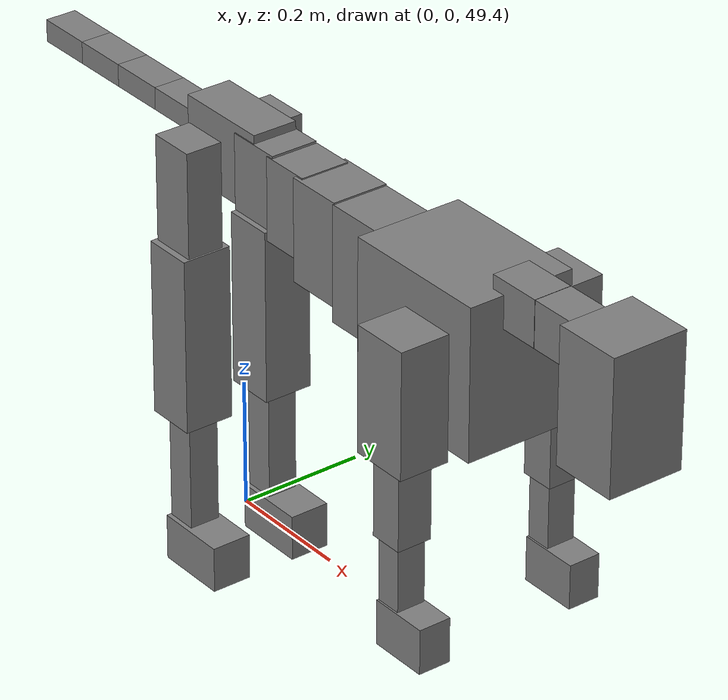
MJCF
<mujoco model="dog">

    <default>
        <joint armature="0.02" stiffness="1" damping="0.2" limited="true"/>
        <geom condim="3" friction="1 0.05 0.05" margin="0.01"/>
        <motor ctrllimited="true" ctrlrange="-1.0 1.0" forcelimited="true" gear="50"/>
    </default>

    <compiler inertiafromgeom="true" angle="radian"/>

    <option timestep="0.016" iterations="50" tolerance="1e-10" solver="Newton" jacobian="dense" cone="pyramidal"/>

    <size nconmax="20000" njmax="60000" nstack="5000000"/>
    <visual>
        <map force="0.1" zfar="30"/>
        <rgba haze="0.15 0.25 0.35 1"/>
        <quality shadowsize="2048"/>
        <global offwidth="800" offheight="800"/>
    </visual>

    <asset>
        <texture type="skybox" builtin="gradient" rgb1="0.3 0.5 0.7" rgb2="0 0 0" width="512" height="512"/>
        <texture name="texplane" type="2d" builtin="checker" rgb1=".2 .3 .4" rgb2=".1 0.15 0.2" width="512" height="512"
                 mark="cross" markrgb=".8 .8 .8"/>
        <texture name="texgeom" type="cube" builtin="flat" mark="cross" width="127" height="1278" rgb1="0.8 0.6 0.4"
                 rgb2="0.8 0.6 0.4" markrgb="1 1 1" random="0.01"/>

        <material name="matplane" reflectance="0.3" texture="texplane" texrepeat="1 1" texuniform="true"/>
        <material name="matgeom" texture="texgeom" texuniform="true" rgba="0.8 0.6 .4 1"/>
    </asset>

    <worldbody>
        <geom name="floor" pos="0 0 0" size="0 0 .25" type="plane" material="matplane" condim="3"/>

        <light directional="false" diffuse=".2 .2 .2" specular="0 0 0" pos="0 0 5" dir="0 0 -1" castshadow="false"/>
        <light mode="targetbodycom" target="torso" directional="false" diffuse=".8 .8 .8" specular="0.3 0.3 0.3"
               pos="0 0 4.0" dir="0 0 -1"/>

        <body name="root" pos="0 0 50">
            <freejoint name="root_1"/>
            <geom type="box" pos="0 0 -0.02" size="0.0774  0.0358  0.063" density="2030"/>

            <body name="spine1" pos="0.054 0 0">
                <joint name="spine1_y" axis="0 1 0" range="0 0.7" limited="true"/>
                <geom type="box" pos="0.02375 0 -0.03" size="0.04375  0.0375  0.05985" density="2030"/>

                <body name="spine2" pos="0.0612 0 0">
                    <joint name="spine2_y" axis="0 1 0" range="-0.15 0.15" limited="true"/>
                    <geom type="box" pos="0.03555  0  -0.04" size="0.04055  0.039  0.06615" density="2030"/>

                    <body name="spine3" pos="0.0730 0 0">
                        <joint name="spine3_y" axis="0 1 0" range="-0.15 0.15" limited="true"/>
                        <geom type="box" pos="0.03555  0  -0.057" size="0.04555  0.0445  0.081" density="2030"/>

                        <body name="spine4" pos="0.0780 0 0">
                            <joint name="spine4_y" axis="0 1 0" range="-0.15 0.15" limited="true"/>
                            <geom type="box" pos="0.05265  0  -0.07" size="0.05265  0.045  0.09135" density="2030"/>

                            <body name="torso" pos="0.1082 0 0">
                                <joint name="torso_y" axis="0 1 0" range="-0.15 0.15" limited="true"/>
                                <geom type="box" pos="0.11925  0  -0.085" size="0.11925  0.085  0.11745"
                                      density="2030"/>

                                <body name="neck1" pos="0.2160  0   0.0180">
                                    <joint name="neck1_y" axis="0 1 0" range="-1.2  -1" limited="true"/>
                                    <geom type="box" pos="0.0423  0  0" size="0.0423  0.03  0.036" density="2325"/>

                                    <body name="neck2" pos="0.0853  0  0">
                                        <joint name="neck2_y" axis="0 1 0" range="0.1  0" limited="true"/>
                                        <geom type="box" pos="0.0423  0  0" size="0.0423  0.03  0.036" density="2325"/>

                                        <body name="head" pos="0.0853  0  0">
                                            <joint name="head_y" axis="0 1 0" range="-0.3  -0.2" limited="true"/>
                                            <geom type="box" pos="0.0531  0  -0.055" size="0.0531  0.06  0.1044"
                                                  density="4030"/>

                                        </body>
                                    </body>
                                </body>

                                <body name="front_shoulder" pos="0.156  0   -0.0480">
                                    <joint name="front_shoulder_y" axis="0 1 0" range="-1 1.5" limited="true"/>
                                    <geom type="box" pos="0 0.13 -0.0709" size="0.0461  0.0394  0.0976" density="1158"/>
                                    <geom type="box" pos="0 -0.13 -0.0709" size="0.0461  0.0394  0.0976"
                                          density="1158"/>

                                    <body name="front_elbow" pos="0  0  -0.1418">
                                        <joint name="front_elbow_y" axis="0 1 0" range="-2 0" limited="true"/>
                                        <geom type="box" pos="0 0.13 -0.0757" size="0.0270  0.0276  0.0757"
                                              density="1081"/>
                                        <geom type="box" pos="0 -0.13 -0.0757" size="0.0270  0.0276  0.0757"
                                              density="1081"/>

                                        <body name="front_wrist" pos="0  0  -0.1514">
                                            <joint name="front_wrist_y" axis="0 1 0" range="-0.2 0" limited="true"/>
                                            <geom type="box" pos="0 0.13 -0.0579" size="0.0205  0.0227  0.0711"
                                                  density="1664"/>
                                            <geom type="box" pos="0 -0.13 -0.0579" size="0.0205  0.0227  0.0711"
                                                  density="1664"/>

                                            <body name="front_finger_end" pos="0  0  -0.1159">
                                                <joint name="front_finger_y" axis="0 1 0" range="-0.4 1"
                                                       limited="true"/>
                                                <geom type="box" pos="0.0256  0.13  -0.0203"
                                                      size="0.0470  0.0256  0.0353" density="1515"/>
                                                <geom type="box" pos="0.0256  -0.13  -0.0203"
                                                      size="0.0470  0.0256  0.0353" density="1515"/>

                                            </body>

                                        </body>
                                    </body>
                                </body>

                            </body>
                        </body>
                    </body>
                </body>
            </body>

            <body name="back_hip" pos="-0.03 0 -0.018">
                <joint name="back_hip_y" axis="0 1 0" range="-1.5 0.3" limited="true"/>
                <geom type="box" pos="0 0.07 -0.0796" size="0.0371  0.0291  0.1024" density="1154"/>
                <geom type="box" pos="0 -0.07 -0.0796" size="0.0371  0.0291  0.1024" density="1154"/>

                <body name="back_knee" pos="0  0  -0.1592">
                    <joint name="back_knee_y" axis="0 1 0" range="0 2.8" limited="true"/>
                    <geom type="box" pos="0 0.07 -0.1235" size="0.0400  0.0394  0.1390" density="1227"/>
                    <geom type="box" pos="0 -0.07 -0.1235" size="0.0400  0.0394  0.1390" density="1227"/>

                    <body name="back_ankle" pos="0  0  -0.2469">
                        <joint name="back_ankle_y" axis="0 1 0" range="-2.2 0" limited="true"/>
                        <geom type="box" pos="0 0.07 -0.1019" size="0.0243  0.0243  0.1131" density="1284"/>
                        <geom type="box" pos="0 -0.07 -0.1019" size="0.0243  0.0243  0.1131" density="1284"/>

                        <body name="back_toe_end" pos="0  0  -0.2037">
                            <joint name="back_toe_y" axis="0 1 0" range="-0.4 1" limited="true"/>
                            <geom type="box" pos="0.0316  0.07  -0.0212" size="0.0578  0.0316  0.0362" density="1515"/>
                            <geom type="box" pos="0.0316  -0.07  -0.0212" size="0.0578  0.0316  0.0362" density="1515"/>

                        </body>
                    </body>
                </body>
            </body>

            <body name="tail1" pos="-0.074 0 -0.006">
                <joint name="tail1_y" axis="0 1 0" range="-0.2 0.2" limited="true"/>
                <geom type="box" pos="-0.0536  0  0" size="0.045  0.025  0.0175" density="1587"/>

                <body name="tail2" pos="-0.09 0 0">
                    <joint name="tail2_y" axis="0 1 0" range="-0.2 0.2" limited="true"/>
                    <geom type="box" pos="-0.0536  0  0" size="0.045  0.025  0.0175" density="1587"/>

                    <body name="tail3" pos="-0.09 0 0">
                        <joint name="tail3_y" axis="0 1 0" range="-0.2 0.2" limited="true"/>
                        <geom type="box" pos="-0.0536  0  0" size="0.045  0.025  0.0175" density="1587"/>

                        <body name="tail4" pos="-0.09 0 0">
                            <joint name="tail4_y" axis="0 1 0" range="-0.2 0.2" limited="true"/>
                            <geom type="box" pos="-0.0536  0  0" size="0.045  0.025  0.0175" density="1587"/>

                        </body>
                    </body>
                </body>
            </body>
        </body>
    </worldbody>

    <actuator>
        <motor joint="spine1_y" forcerange="-150 150     "/>
        <motor joint="spine2_y" forcerange="-150 150     "/>
        <motor joint="spine3_y" forcerange="-150 150     "/>
        <motor joint="spine4_y" forcerange="-150 150     "/>
        <motor joint="torso_y" forcerange="-150 150     "/>
        <motor joint="neck1_y" forcerange="-100 100       "/>
        <motor joint="neck2_y" forcerange="-100 100       "/>
        <motor joint="head_y" forcerange="-150 150       "/>
        <motor joint="front_shoulder_y" forcerange="-166.26 196.62"/>
        <motor joint="front_elbow_y" forcerange="-120.90 179.64"/>
        <motor joint="front_wrist_y" forcerange="-125.65 56.35"/>
        <motor joint="front_finger_y" forcerange="-37.87 58.72"/>
        <motor joint="back_hip_y" forcerange="-378.75 209.73"/>
        <motor joint="back_knee_y" forcerange="-396.83 376.39"/>
        <motor joint="back_angle_y" forcerange="-156.40 131.68"/>
        <motor joint="back_toe_y" forcerange="-92.82 79.58"/>
        <motor joint="tail1_y" forcerange="-50 50     "/>
        <motor joint="tail2_y" forcerange="-50 50     "/>
        <motor joint="tail3_y" forcerange="-50 50     "/>
        <motor joint="tail4_y" forcerange="-50 50     "/>
    </actuator>
</mujoco>
